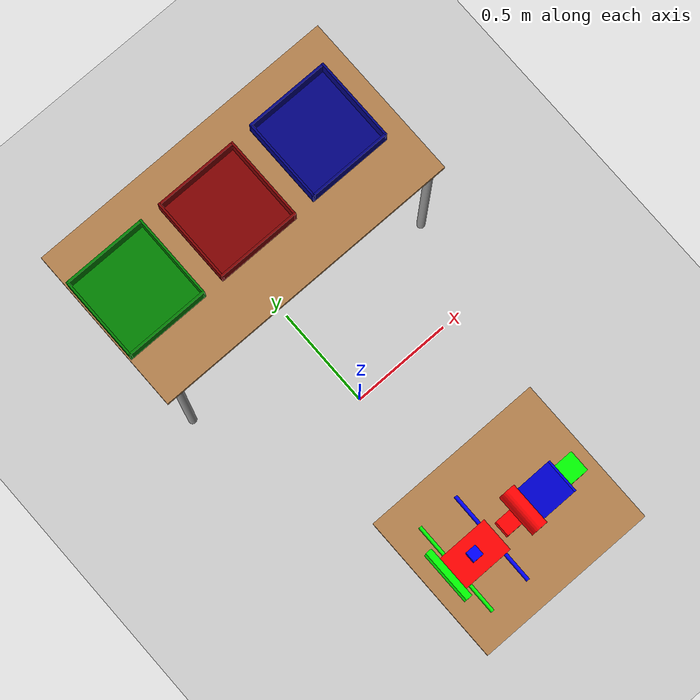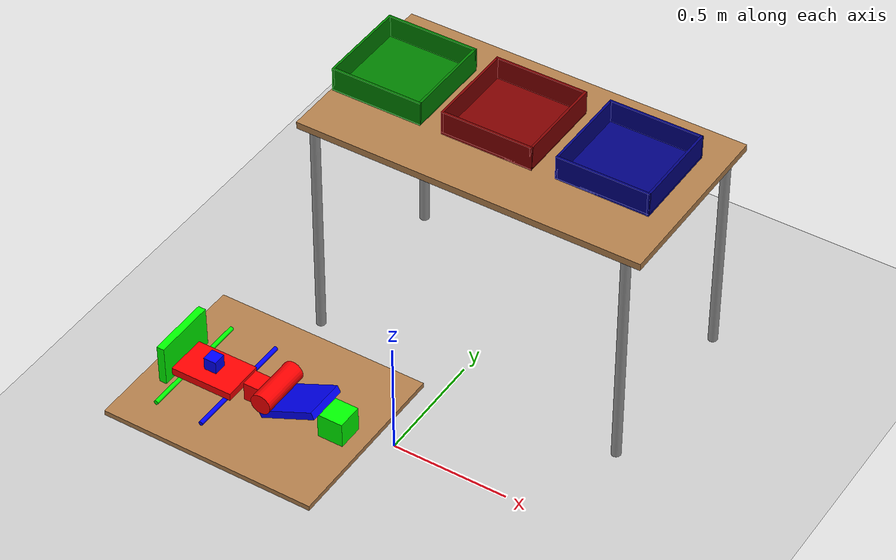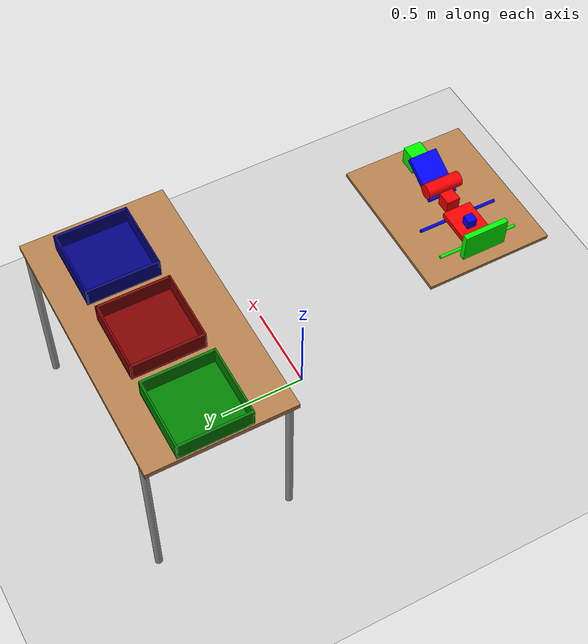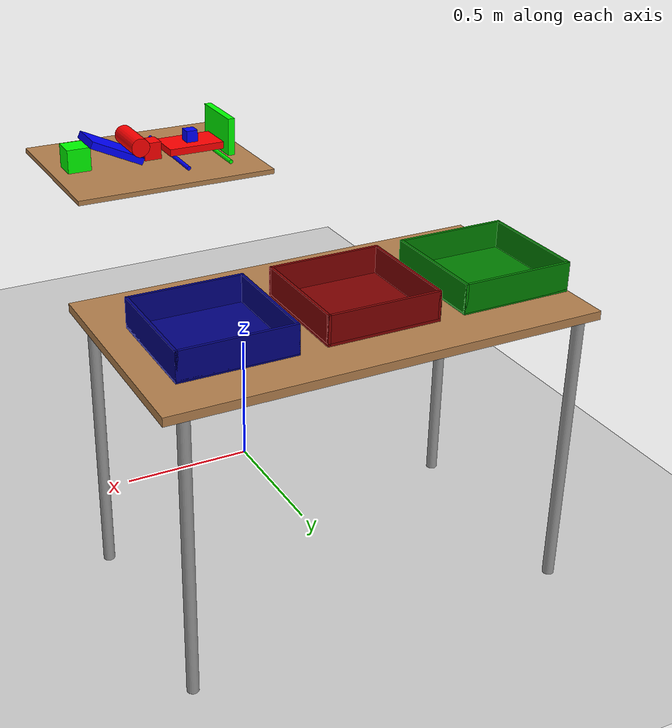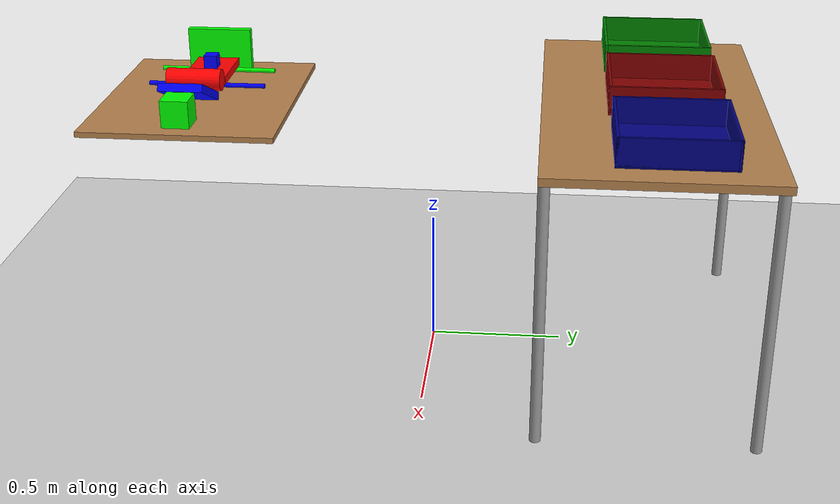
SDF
<sdf version="1.7">
 <world name="default">
  <light name="sun" type="directional">
   <pose>0 0 10 0 -0 0</pose>
   <diffuse>0.8 0.8 0.8 1</diffuse>
   <specular>0.2 0.2 0.2 1</specular>
   <attenuation>
    <range>1000</range>
    <constant>0.9</constant>
    <linear>0.01</linear>
    <quadratic>0.001</quadratic>
   </attenuation>
   <direction>-0.5 0.1 -0.9</direction>
   <spot><inner_angle>0</inner_angle><outer_angle>0</outer_angle><falloff>0</falloff></spot>
  </light>
  <model name="ground_plane">
   <static>1</static>
   <link name="link">
    <collision name="collision">
     <geometry><plane><normal>0 0 1</normal><size>100 100</size></plane></geometry>
     <surface><friction><ode><mu>100</mu><mu2>50</mu2></ode></friction></surface>
    </collision>
    <visual name="visual">
     <cast_shadows>0</cast_shadows>
     <geometry><plane><normal>0 0 1</normal><size>100 100</size></plane></geometry>
     <material>
      <script><uri>file://media/materials/scripts/gazebo.material</uri><name>Gazebo/Grey</name></script>
     </material>
    </visual>
   </link>
  </model>
  <gravity>0 0 -9.8</gravity>
  <magnetic_field>6e-06 2.3e-05 -4.2e-05</magnetic_field>
  <atmosphere type="adiabatic"/>
  <physics type="ode">
   <max_step_size>0.001</max_step_size>
   <real_time_factor>1</real_time_factor>
   <real_time_update_rate>1000</real_time_update_rate>
  </physics>
  <scene><ambient>0.4 0.4 0.4 1</ambient><background>0.7 0.7 0.7 1</background><shadows>1</shadows></scene>
  <audio><device>default</device></audio>
  <spherical_coordinates>
   <surface_model>EARTH_WGS84</surface_model>
   <latitude_deg>0</latitude_deg>
   <longitude_deg>0</longitude_deg>
   <elevation>0</elevation>
   <heading_deg>0</heading_deg>
  </spherical_coordinates>
  <model name="table">
   <static>1</static>
   <link name="link">
    <collision name="surface">
     <pose>0 0 1 0 -0 0</pose>
     <geometry><box><size>1.5 0.8 0.03</size></box></geometry>
     <surface>
      <friction><ode><mu>10</mu><mu2>5</mu2></ode></friction>
      <contact><ode><soft_cfm>0.0001</soft_cfm><soft_erp>0.4</soft_erp><kp>1e+06</kp><kd>10</kd></ode></contact>
     </surface>
    </collision>
    <visual name="visual1">
     <pose>0 0 1 0 -0 0</pose>
     <geometry><box><size>1.5 0.8 0.03</size></box></geometry>
     <material>
      <script><uri>file://media/materials/scripts/gazebo.material</uri><name>Gazebo/Wood</name></script>
     </material>
    </visual>
    <collision name="front_left_leg">
     <pose>0.68 0.38 0.5 0 -0 0</pose>
     <geometry><cylinder><radius>0.02</radius><length>1</length></cylinder></geometry>
    </collision>
    <visual name="front_left_leg">
     <pose>0.68 0.38 0.5 0 -0 0</pose>
     <geometry><cylinder><radius>0.02</radius><length>1</length></cylinder></geometry>
     <material>
      <script><uri>file://media/materials/scripts/gazebo.material</uri><name>Gazebo/Grey</name></script>
     </material>
    </visual>
    <collision name="front_right_leg">
     <pose>0.68 -0.38 0.5 0 -0 0</pose>
     <geometry><cylinder><radius>0.02</radius><length>1</length></cylinder></geometry>
    </collision>
    <visual name="front_right_leg">
     <pose>0.68 -0.38 0.5 0 -0 0</pose>
     <geometry><cylinder><radius>0.02</radius><length>1</length></cylinder></geometry>
     <material>
      <script><uri>file://media/materials/scripts/gazebo.material</uri><name>Gazebo/Grey</name></script>
     </material>
    </visual>
    <collision name="back_right_leg">
     <pose>-0.68 -0.38 0.5 0 -0 0</pose>
     <geometry><cylinder><radius>0.02</radius><length>1</length></cylinder></geometry>
    </collision>
    <visual name="back_right_leg">
     <pose>-0.68 -0.38 0.5 0 -0 0</pose>
     <geometry><cylinder><radius>0.02</radius><length>1</length></cylinder></geometry>
     <material>
      <script><uri>file://media/materials/scripts/gazebo.material</uri><name>Gazebo/Grey</name></script>
     </material>
    </visual>
    <collision name="back_left_leg">
     <pose>-0.68 0.38 0.5 0 -0 0</pose>
     <geometry><cylinder><radius>0.02</radius><length>1</length></cylinder></geometry>
    </collision>
    <visual name="back_left_leg">
     <pose>-0.68 0.38 0.5 0 -0 0</pose>
     <geometry><cylinder><radius>0.02</radius><length>1</length></cylinder></geometry>
     <material>
      <script><uri>file://media/materials/scripts/gazebo.material</uri><name>Gazebo/Grey</name></script>
     </material>
    </visual>
    <inertial>
     <inertia><ixx>1</ixx><ixy>0</ixy><ixz>0</ixz><iyy>1</iyy><iyz>0</iyz><izz>1</izz></inertia>
     <mass>50</mass>
    </inertial>
   </link>
   <pose>0.056083 0.801191 -1.2e-05 0 -0 2.5e-05</pose>
  </model>
  <plugin name="gazebo_link_attacher" filename="libgazebo_link_attacher.so"/>
  <plugin name="gazebo_ros_state" filename="libgazebo_ros_state.so">
   <namespace>/gazebo</namespace>
   <update_rate>100</update_rate>
  </plugin>
  <model name="cube_b">
   <link name="link_2">
    <inertial>
     <mass>2</mass>
     <inertia>
      <ixx>0.00083333</ixx>
      <ixy>0</ixy>
      <ixz>0</ixz>
      <iyy>0.00083333</iyy>
      <iyz>0</iyz>
      <izz>0.00083333</izz>
     </inertia>
    </inertial>
    <visual name="visual">
     <geometry><box><size>0.05 0.05 0.05</size></box></geometry>
     <material>
      <lighting>1</lighting>
      <script><uri>file://media/materials/scripts/gazebo.material</uri><name>Gazebo/Grey</name></script>
      <ambient>0 0 1 1</ambient>
      <diffuse>0 0 1 1</diffuse>
      <specular>0 0 0 1</specular>
      <emissive>0 0 0 1</emissive>
      <shader type="vertex"><normal_map>__default__</normal_map></shader>
     </material>
    </visual>
    <collision name="collision">
     <geometry><box><size>0.05 0.05 0.05</size></box></geometry>
     <surface>
      <friction>
       <ode><mu>0.8</mu><mu2>0.8</mu2><fdir1>0 0 0</fdir1><slip1>0</slip1><slip2>0</slip2></ode>
       <torsional>
        <coefficient>1</coefficient>
        <patch_radius>0</patch_radius>
        <surface_radius>0</surface_radius>
        <use_patch_radius>1</use_patch_radius>
        <ode><slip>0</slip></ode>
       </torsional>
      </friction>
      <bounce><restitution_coefficient>0</restitution_coefficient><threshold>1e+06</threshold></bounce>
      <contact>
       <collide_without_contact>0</collide_without_contact>
       <collide_without_contact_bitmask>1</collide_without_contact_bitmask>
       <collide_bitmask>1</collide_bitmask>
       <ode>
        <soft_cfm>0.0001</soft_cfm>
        <soft_erp>0.4</soft_erp>
        <kp>1e+06</kp>
        <kd>10</kd>
        <max_vel>0.01</max_vel>
        <min_depth>0</min_depth>
       </ode>
      </contact>
     </surface>
    </collision>
   </link>
   <static>0</static>
   <allow_auto_disable>0</allow_auto_disable>
   <pose>-0.160538 -0.870911 1.0567 -1.56988 -0.004212 -0.002553</pose>
  </model>
  <model name="cube_g">
   <link name="link_2">
    <inertial>
     <mass>2</mass>
     <inertia>
      <ixx>0.00333333</ixx>
      <iyy>0.00333333</iyy>
      <izz>0.00333333</izz>
      <ixy>0</ixy>
      <ixz>0</ixz>
      <iyz>0</iyz>
     </inertia>
    </inertial>
    <visual name="visual">
     <geometry><box><size>0.1 0.1 0.1</size></box></geometry>
     <material>
      <lighting>1</lighting>
      <script><uri>file://media/materials/scripts/gazebo.material</uri><name>Gazebo/Grey</name></script>
      <ambient>0 1 0 1</ambient>
      <diffuse>0 1 0 1</diffuse>
      <specular>0 0 0 1</specular>
      <emissive>0 0 0 1</emissive>
      <shader type="vertex"><normal_map>__default__</normal_map></shader>
     </material>
    </visual>
    <collision name="collision">
     <geometry><box><size>0.1 0.1 0.1</size></box></geometry>
     <surface>
      <friction>
       <ode><mu>0.8</mu><mu2>0.8</mu2><fdir1>0 0 0</fdir1><slip1>0</slip1><slip2>0</slip2></ode>
       <torsional>
        <coefficient>1</coefficient>
        <patch_radius>0</patch_radius>
        <surface_radius>0</surface_radius>
        <use_patch_radius>1</use_patch_radius>
        <ode><slip>0</slip></ode>
       </torsional>
      </friction>
      <bounce><restitution_coefficient>0</restitution_coefficient><threshold>1e+06</threshold></bounce>
      <contact>
       <collide_without_contact>0</collide_without_contact>
       <collide_without_contact_bitmask>1</collide_without_contact_bitmask>
       <collide_bitmask>1</collide_bitmask>
       <ode>
        <soft_cfm>0.0001</soft_cfm>
        <soft_erp>0.4</soft_erp>
        <kp>1e+06</kp>
        <kd>10</kd>
        <max_vel>0.01</max_vel>
        <min_depth>0</min_depth>
       </ode>
      </contact>
     </surface>
    </collision>
   </link>
   <static>0</static>
   <allow_auto_disable>0</allow_auto_disable>
   <pose>0.353303 -0.868435 1.03703 0.001157 -0.004137 -0.002457</pose>
  </model>
  <model name="cube_r">
   <link name="link_2">
    <inertial>
     <mass>2</mass>
     <inertia>
      <ixx>0.001875</ixx>
      <ixy>0</ixy>
      <ixz>0</ixz>
      <iyy>0.001875</iyy>
      <iyz>0</iyz>
      <izz>0.001875</izz>
     </inertia>
    </inertial>
    <visual name="visual">
     <geometry><box><size>0.075 0.075 0.075</size></box></geometry>
     <material>
      <lighting>1</lighting>
      <script><uri>file://media/materials/scripts/gazebo.material</uri><name>Gazebo/Grey</name></script>
      <ambient>1 0 0 1</ambient>
      <diffuse>1 0 0 1</diffuse>
      <specular>0 0 0 1</specular>
      <emissive>0 0 0 1</emissive>
      <shader type="vertex"><normal_map>__default__</normal_map></shader>
     </material>
    </visual>
    <collision name="collision">
     <geometry><box><size>0.075 0.075 0.075</size></box></geometry>
     <surface>
      <friction>
       <ode><mu>0.8</mu><mu2>0.8</mu2><fdir1>0 0 0</fdir1><slip1>0</slip1><slip2>0</slip2></ode>
       <torsional>
        <coefficient>1</coefficient>
        <patch_radius>0</patch_radius>
        <surface_radius>0</surface_radius>
        <use_patch_radius>1</use_patch_radius>
        <ode><slip>0</slip></ode>
       </torsional>
      </friction>
      <bounce><restitution_coefficient>0</restitution_coefficient><threshold>1e+06</threshold></bounce>
      <contact>
       <collide_without_contact>0</collide_without_contact>
       <collide_without_contact_bitmask>1</collide_without_contact_bitmask>
       <collide_bitmask>1</collide_bitmask>
       <ode>
        <soft_cfm>0.0001</soft_cfm>
        <soft_erp>0.4</soft_erp>
        <kp>1e+06</kp>
        <kd>10</kd>
        <max_vel>0.01</max_vel>
        <min_depth>0</min_depth>
       </ode>
      </contact>
     </surface>
    </collision>
   </link>
   <static>0</static>
   <allow_auto_disable>0</allow_auto_disable>
   <pose>0.025995 -0.869007 1.02317 1.56663 -0.001118 1.57222</pose>
  </model>
  <model name="cylinder_r">
   <link name="link_0">
    <inertial>
     <mass>0.2</mass>
     <inertia>
      <ixx>0.000747</ixx>
      <ixy>0</ixy>
      <ixz>0</ixz>
      <iyy>0.000747</iyy>
      <iyz>0</iyz>
      <izz>0.00016</izz>
     </inertia>
    </inertial>
    <visual name="visual">
     <geometry><cylinder><radius>0.04</radius><length>0.2</length></cylinder></geometry>
     <material>
      <lighting>1</lighting>
      <script><uri>file://media/materials/scripts/gazebo.material</uri><name>Gazebo/Grey</name></script>
      <ambient>1 0 0 1</ambient>
      <diffuse>1 0 0 1</diffuse>
      <specular>0 0 0 1</specular>
      <emissive>0 0 0 1</emissive>
      <shader type="vertex"><normal_map>__default__</normal_map></shader>
     </material>
    </visual>
    <collision name="collision">
     <geometry><cylinder><radius>0.04</radius><length>0.2</length></cylinder></geometry>
     <surface>
      <friction>
       <ode><mu>0.5</mu><mu2>0.5</mu2><fdir1>0 0 0</fdir1><slip1>0</slip1><slip2>0</slip2></ode>
       <torsional>
        <coefficient>1</coefficient>
        <patch_radius>0</patch_radius>
        <surface_radius>0</surface_radius>
        <use_patch_radius>1</use_patch_radius>
        <ode><slip>0</slip></ode>
       </torsional>
      </friction>
      <bounce><restitution_coefficient>0</restitution_coefficient><threshold>1e+06</threshold></bounce>
      <contact>
       <collide_without_contact>0</collide_without_contact>
       <collide_without_contact_bitmask>1</collide_without_contact_bitmask>
       <collide_bitmask>1</collide_bitmask>
       <ode>
        <soft_cfm>0.0001</soft_cfm>
        <soft_erp>0.4</soft_erp>
        <kp>1e+06</kp>
        <kd>10</kd>
        <max_vel>0.01</max_vel>
        <min_depth>0</min_depth>
       </ode>
      </contact>
     </surface>
    </collision>
   </link>
   <static>0</static>
   <allow_auto_disable>0</allow_auto_disable>
   <pose>0.102543 -0.868494 1.06875 1.55486 1.54401 -0.014822</pose>
  </model>
  <model name="cylinder_b">
   <link name="link_0">
    <inertial>
     <mass>0.2</mass>
     <inertia><ixx>0.00331</ixx><ixy>0</ixy><ixz>0</ixz><iyy>0.00331</iyy><iyz>0</iyz><izz>7.11e-06</izz></inertia>
    </inertial>
    <visual name="visual">
     <geometry><cylinder><radius>0.00843157</radius><length>0.445034</length></cylinder></geometry>
     <material>
      <lighting>1</lighting>
      <ambient>0 0 1 1</ambient>
      <diffuse>0 0 1 1</diffuse>
      <specular>0.1 0.1 0.1 1</specular>
      <emissive>0 0 0 1</emissive>
      <shader type="vertex"><normal_map>__default__</normal_map></shader>
     </material>
    </visual>
    <collision name="collision">
     <geometry><cylinder><radius>0.008432</radius><length>0.445034</length></cylinder></geometry>
     <surface>
      <friction>
       <ode><mu>0.4</mu><mu2>0.4</mu2><fdir1>0 0 0</fdir1><slip1>0</slip1><slip2>0</slip2></ode>
       <torsional>
        <coefficient>1</coefficient>
        <patch_radius>0</patch_radius>
        <surface_radius>0</surface_radius>
        <use_patch_radius>1</use_patch_radius>
        <ode><slip>0</slip></ode>
       </torsional>
      </friction>
      <bounce><restitution_coefficient>0</restitution_coefficient><threshold>1e+06</threshold></bounce>
      <contact>
       <collide_without_contact>0</collide_without_contact>
       <collide_without_contact_bitmask>1</collide_without_contact_bitmask>
       <collide_bitmask>1</collide_bitmask>
       <ode>
        <soft_cfm>0.0001</soft_cfm>
        <soft_erp>0.4</soft_erp>
        <kp>1e+06</kp>
        <kd>10</kd>
        <max_vel>0.01</max_vel>
        <min_depth>0</min_depth>
       </ode>
      </contact>
     </surface>
    </collision>
   </link>
   <static>0</static>
   <allow_auto_disable>0</allow_auto_disable>
   <pose>-0.060636 -0.868825 0.993725 1.57798 1.40945 0.000473</pose>
  </model>
  <model name="cylinder_g">
   <link name="link_0">
    <inertial>
     <mass>0.2</mass>
     <inertia><ixx>0.00331</ixx><ixy>0</ixy><ixz>0</ixz><iyy>0.00331</iyy><iyz>0</iyz><izz>7.11e-06</izz></inertia>
    </inertial>
    <visual name="visual">
     <geometry><cylinder><radius>0.00843157</radius><length>0.445034</length></cylinder></geometry>
     <material>
      <lighting>1</lighting>
      <ambient>0 1 0 1</ambient>
      <diffuse>0 1 0 1</diffuse>
      <specular>0.1 0.1 0.1 1</specular>
      <emissive>0 0 0 1</emissive>
      <shader type="vertex"><normal_map>__default__</normal_map></shader>
     </material>
    </visual>
    <collision name="collision">
     <geometry><cylinder><radius>0.008432</radius><length>0.445034</length></cylinder></geometry>
     <surface>
      <friction>
       <ode><mu>0.5</mu><mu2>0.5</mu2><fdir1>0 0 0</fdir1><slip1>0</slip1><slip2>0</slip2></ode>
       <torsional>
        <coefficient>1</coefficient>
        <patch_radius>0</patch_radius>
        <surface_radius>0</surface_radius>
        <use_patch_radius>1</use_patch_radius>
        <ode><slip>0</slip></ode>
       </torsional>
      </friction>
      <bounce><restitution_coefficient>0</restitution_coefficient><threshold>1e+06</threshold></bounce>
      <contact>
       <collide_without_contact>0</collide_without_contact>
       <collide_without_contact_bitmask>1</collide_without_contact_bitmask>
       <collide_bitmask>1</collide_bitmask>
       <ode>
        <soft_cfm>0.0001</soft_cfm>
        <soft_erp>0.4</soft_erp>
        <kp>1e+06</kp>
        <kd>10</kd>
        <max_vel>0.01</max_vel>
        <min_depth>0</min_depth>
       </ode>
      </contact>
     </surface>
    </collision>
   </link>
   <static>0</static>
   <allow_auto_disable>0</allow_auto_disable>
   <pose>-0.250642 -0.868155 0.992934 1.57781 1.40558 0.000848</pose>
  </model>
  <model name="cuboid_r">
   <link name="link">
    <inertial>
     <mass>2</mass>
     <inertia><ixx>0.00442</ixx><iyy>0.0101</iyy><izz>0.0143</izz><ixy>0</ixy><ixz>0</ixz><iyz>0</iyz></inertia>
    </inertial>
    <visual name="visual">
     <geometry><box><size>0.245 0.16 0.03</size></box></geometry>
     <material><ambient>1 0 0 1</ambient><diffuse>1 0 0 1</diffuse><specular>0.1 0.1 0.1 1</specular></material>
    </visual>
    <collision name="collision">
     <geometry><box><size>0.245 0.16 0.03</size></box></geometry>
     <surface>
      <friction>
       <ode><mu>0.6</mu><mu2>0.6</mu2><fdir1>0 0 0</fdir1><slip1>0</slip1><slip2>0</slip2></ode>
       <torsional>
        <coefficient>1</coefficient>
        <patch_radius>0</patch_radius>
        <surface_radius>0</surface_radius>
        <use_patch_radius>1</use_patch_radius>
        <ode><slip>0</slip></ode>
       </torsional>
      </friction>
      <bounce><restitution_coefficient>0</restitution_coefficient><threshold>1e+06</threshold></bounce>
      <contact>
       <collide_without_contact>0</collide_without_contact>
       <collide_without_contact_bitmask>1</collide_without_contact_bitmask>
       <collide_bitmask>1</collide_bitmask>
       <ode>
        <soft_cfm>0.0001</soft_cfm>
        <soft_erp>0.4</soft_erp>
        <kp>1e+06</kp>
        <kd>10</kd>
        <max_vel>0.01</max_vel>
        <min_depth>0</min_depth>
       </ode>
      </contact>
     </surface>
    </collision>
   </link>
   <static>0</static>
   <allow_auto_disable>0</allow_auto_disable>
   <pose>-0.159413 -0.873278 1.01672 3.1407 0.004195 -3.13882</pose>
  </model>
  <model name="cuboid_g">
   <link name="link">
    <inertial>
     <mass>2</mass>
     <inertia><ixx>0.00442</ixx><iyy>0.0101</iyy><izz>0.0143</izz><ixy>0</ixy><ixz>0</ixz><iyz>0</iyz></inertia>
    </inertial>
    <visual name="visual">
     <geometry><box><size>0.245 0.16 0.03</size></box></geometry>
     <material><ambient>0 1 0 1</ambient><diffuse>0 1 0 1</diffuse><specular>0.1 0.1 0.1 1</specular></material>
    </visual>
    <collision name="collision">
     <geometry><box><size>0.245 0.16 0.03</size></box></geometry>
     <surface>
      <friction>
       <ode><mu>0.6</mu><mu2>0.6</mu2><fdir1>0 0 0</fdir1><slip1>0</slip1><slip2>0</slip2></ode>
       <torsional>
        <coefficient>1</coefficient>
        <patch_radius>0</patch_radius>
        <surface_radius>0</surface_radius>
        <use_patch_radius>1</use_patch_radius>
        <ode><slip>0</slip></ode>
       </torsional>
      </friction>
      <bounce><restitution_coefficient>0</restitution_coefficient><threshold>1e+06</threshold></bounce>
      <contact>
       <collide_without_contact>0</collide_without_contact>
       <collide_without_contact_bitmask>1</collide_without_contact_bitmask>
       <collide_bitmask>1</collide_bitmask>
       <ode>
        <soft_cfm>0.0001</soft_cfm>
        <soft_erp>0.4</soft_erp>
        <kp>1e+06</kp>
        <kd>10</kd>
        <max_vel>0.01</max_vel>
        <min_depth>0</min_depth>
       </ode>
      </contact>
     </surface>
    </collision>
   </link>
   <static>0</static>
   <allow_auto_disable>0</allow_auto_disable>
   <pose>-0.297347 -0.866839 1.06433 -1.56663 0.001126 -1.57096</pose>
  </model>
  <model name="cuboid_b">
   <link name="link">
    <inertial>
     <mass>2</mass>
     <inertia><ixx>0.00442</ixx><iyy>0.0101</iyy><izz>0.0143</izz><ixy>0</ixy><ixz>0</ixz><iyz>0</iyz></inertia>
    </inertial>
    <visual name="visual">
     <geometry><box><size>0.245 0.16 0.03</size></box></geometry>
     <material><ambient>0 0 1 1</ambient><diffuse>0 0 1 1</diffuse><specular>0.1 0.1 0.1 1</specular></material>
    </visual>
    <collision name="collision">
     <geometry><box><size>0.245 0.16 0.03</size></box></geometry>
     <surface>
      <friction>
       <ode><mu>0.6</mu><mu2>0.6</mu2><fdir1>0 0 0</fdir1><slip1>0</slip1><slip2>0</slip2></ode>
       <torsional>
        <coefficient>1</coefficient>
        <patch_radius>0</patch_radius>
        <surface_radius>0</surface_radius>
        <use_patch_radius>1</use_patch_radius>
        <ode><slip>0</slip></ode>
       </torsional>
      </friction>
      <bounce><restitution_coefficient>0</restitution_coefficient><threshold>1e+06</threshold></bounce>
      <contact>
       <collide_without_contact>0</collide_without_contact>
       <collide_without_contact_bitmask>1</collide_without_contact_bitmask>
       <collide_bitmask>1</collide_bitmask>
       <ode>
        <soft_cfm>0.0001</soft_cfm>
        <soft_erp>0.4</soft_erp>
        <kp>1e+06</kp>
        <kd>10</kd>
        <max_vel>0.01</max_vel>
        <min_depth>0</min_depth>
       </ode>
      </contact>
     </surface>
    </collision>
   </link>
   <static>0</static>
   <allow_auto_disable>0</allow_auto_disable>
   <pose>0.195613 -0.869313 1.05219 -0.001239 0.444822 3.1389</pose>
  </model>
  <model name="workspace">
   <link name="link">
    <inertial>
     <mass>100</mass>
     <inertia><ixx>6.02417</ixx><ixy>0</ixy><ixz>0</ixz><iyy>4.08667</iyy><iyz>0</iyz><izz>10.1042</izz></inertia>
    </inertial>
    <visual name="visual">
     <geometry><box><size>0.7 0.85 0.02</size></box></geometry>
     <material>
      <script><name>Gazebo/Wood</name><uri>file://media/materials/scripts/gazebo.material</uri></script>
      <shader type="pixel"/>
     </material>
    </visual>
    <collision name="collision">
     <geometry><box><size>0.7 0.85 0.02</size></box></geometry>
     <surface>
      <friction>
       <ode><mu>100</mu><mu2>50</mu2><fdir1>0 0 0</fdir1><slip1>0</slip1><slip2>0</slip2></ode>
       <torsional>
        <coefficient>1</coefficient>
        <patch_radius>0</patch_radius>
        <surface_radius>0</surface_radius>
        <use_patch_radius>1</use_patch_radius>
        <ode><slip>0</slip></ode>
       </torsional>
      </friction>
      <bounce><restitution_coefficient>0</restitution_coefficient><threshold>1e+06</threshold></bounce>
      <contact>
       <collide_without_contact>0</collide_without_contact>
       <collide_without_contact_bitmask>1</collide_without_contact_bitmask>
       <collide_bitmask>1</collide_bitmask>
       <ode>
        <soft_cfm>0.0001</soft_cfm>
        <soft_erp>0.2</soft_erp>
        <kp>1e+13</kp>
        <kd>10</kd>
        <max_vel>0.01</max_vel>
        <min_depth>0</min_depth>
       </ode>
       <bullet>
        <split_impulse>1</split_impulse>
        <split_impulse_penetration_threshold>-0.01</split_impulse_penetration_threshold>
        <soft_cfm>0</soft_cfm>
        <soft_erp>0.2</soft_erp>
        <kp>1e+13</kp>
        <kd>1</kd>
       </bullet>
      </contact>
     </surface>
    </collision>
   </link>
   <static>1</static>
   <pose>0.0416 -0.859914 0.975746 -0.004154 -0.001127 1.57039</pose>
  </model>
  <model name="tray_red">
   <static>1</static>
   <link name="link">
    <collision name="base_collision">
     <pose>0 0 0.01 0 -0 0</pose>
     <geometry><box><size>0.4 0.4 0.01</size></box></geometry>
     <surface><contact><ode><mu>50</mu><mu2>50</mu2></ode></contact></surface>
    </collision>
    <visual name="base_visual">
     <pose>0 0 0.01 0 -0 0</pose>
     <geometry><box><size>0.4 0.4 0.01</size></box></geometry>
     <material>
      <ambient>1 0 0 1</ambient>
      <diffuse>0.5 0 0 1</diffuse>
      <specular>0 0 0 1</specular>
      <emissive>0 0 0 1</emissive>
      <shininess>100</shininess>
     </material>
    </visual>
    <collision name="front_collision">
     <pose>0 0.195 0.06 0 -0 0</pose>
     <geometry><box><size>0.4 0.01 0.1</size></box></geometry>
    </collision>
    <visual name="front_visual">
     <pose>0 0.195 0.06 0 -0 0</pose>
     <geometry><box><size>0.4 0.01 0.1</size></box></geometry>
     <material>
      <ambient>1 0 0 1</ambient>
      <diffuse>0.5 0 0 1</diffuse>
      <specular>0 0 0 1</specular>
      <emissive>0 0 0 1</emissive>
     </material>
    </visual>
    <collision name="back_collision">
     <pose>0 -0.195 0.06 0 -0 0</pose>
     <geometry><box><size>0.4 0.01 0.1</size></box></geometry>
    </collision>
    <visual name="back_visual">
     <pose>0 -0.195 0.06 0 -0 0</pose>
     <geometry><box><size>0.4 0.01 0.1</size></box></geometry>
     <material>
      <ambient>1 0 0 1</ambient>
      <diffuse>0.5 0 0 1</diffuse>
      <specular>0 0 0 1</specular>
      <emissive>0 0 0 1</emissive>
     </material>
    </visual>
    <collision name="left_collision">
     <pose>0.195 0 0.06 0 -0 0</pose>
     <geometry><box><size>0.01 0.4 0.1</size></box></geometry>
    </collision>
    <visual name="left_visual">
     <pose>0.195 0 0.06 0 -0 0</pose>
     <geometry><box><size>0.01 0.4 0.1</size></box></geometry>
     <material>
      <ambient>1 0 0 1</ambient>
      <diffuse>0.5 0 0 1</diffuse>
      <specular>0 0 0 1</specular>
      <emissive>0 0 0 1</emissive>
     </material>
    </visual>
    <collision name="right_collision">
     <pose>-0.195 0 0.06 0 -0 0</pose>
     <geometry><box><size>0.01 0.4 0.1</size></box></geometry>
    </collision>
    <visual name="right_visual">
     <pose>-0.195 0 0.06 0 -0 0</pose>
     <geometry><box><size>0.01 0.4 0.1</size></box></geometry>
     <material>
      <ambient>1 0 0 1</ambient>
      <diffuse>0.5 0 0 1</diffuse>
      <specular>0 0 0 1</specular>
      <emissive>0 0 0 1</emissive>
     </material>
    </visual>
    <inertial>
     <inertia><ixx>1</ixx><ixy>0</ixy><ixz>0</ixz><iyy>1</iyy><iyz>0</iyz><izz>1</izz></inertia>
     <mass>1</mass>
    </inertial>
   </link>
   <pose>0.003367 0.836815 1.00999 0 -0 0</pose>
  </model>
  <model name="tray_green">
   <static>1</static>
   <link name="link">
    <collision name="base_collision">
     <pose>0 0 0.01 0 -0 0</pose>
     <geometry><box><size>0.4 0.4 0.01</size></box></geometry>
     <surface><contact><ode><mu>50</mu><mu2>50</mu2></ode></contact></surface>
    </collision>
    <visual name="base_visual">
     <pose>0 0 0.01 0 -0 0</pose>
     <geometry><box><size>0.4 0.4 0.01</size></box></geometry>
     <material><ambient>0 1 0 1</ambient><diffuse>0 0.5 0 1</diffuse></material>
    </visual>
    <collision name="front_collision">
     <pose>0 0.195 0.06 0 -0 0</pose>
     <geometry><box><size>0.4 0.01 0.1</size></box></geometry>
    </collision>
    <visual name="front_visual">
     <pose>0 0.195 0.06 0 -0 0</pose>
     <geometry><box><size>0.4 0.01 0.1</size></box></geometry>
     <material><ambient>0 1 0 1</ambient><diffuse>0 0.5 0 1</diffuse></material>
    </visual>
    <collision name="back_collision">
     <pose>0 -0.195 0.06 0 -0 0</pose>
     <geometry><box><size>0.4 0.01 0.1</size></box></geometry>
    </collision>
    <visual name="back_visual">
     <pose>0 -0.195 0.06 0 -0 0</pose>
     <geometry><box><size>0.4 0.01 0.1</size></box></geometry>
     <material><ambient>0 1 0 1</ambient><diffuse>0 0.5 0 1</diffuse></material>
    </visual>
    <collision name="left_collision">
     <pose>0.195 0 0.06 0 -0 0</pose>
     <geometry><box><size>0.01 0.4 0.1</size></box></geometry>
    </collision>
    <visual name="left_visual">
     <pose>0.195 0 0.06 0 -0 0</pose>
     <geometry><box><size>0.01 0.4 0.1</size></box></geometry>
     <material><ambient>0 1 0 1</ambient><diffuse>0 0.5 0 1</diffuse></material>
    </visual>
    <collision name="right_collision">
     <pose>-0.195 0 0.06 0 -0 0</pose>
     <geometry><box><size>0.01 0.4 0.1</size></box></geometry>
    </collision>
    <visual name="right_visual">
     <pose>-0.195 0 0.06 0 -0 0</pose>
     <geometry><box><size>0.01 0.4 0.1</size></box></geometry>
     <material><ambient>0 1 0 1</ambient><diffuse>0 0.5 0 1</diffuse></material>
    </visual>
    <inertial>
     <inertia><ixx>1</ixx><ixy>0</ixy><ixz>0</ixz><iyy>1</iyy><iyz>0</iyz><izz>1</izz></inertia>
     <mass>1</mass>
    </inertial>
   </link>
   <pose>-0.487214 0.834657 1.00999 0 -0 0</pose>
  </model>
  <model name="tray_blue">
   <static>1</static>
   <link name="link">
    <collision name="base_collision">
     <pose>0 0 0.01 0 -0 0</pose>
     <geometry><box><size>0.4 0.4 0.01</size></box></geometry>
     <surface><contact><ode><mu>50</mu><mu2>50</mu2></ode></contact></surface>
    </collision>
    <visual name="base_visual">
     <pose>0 0 0.01 0 -0 0</pose>
     <geometry><box><size>0.4 0.4 0.01</size></box></geometry>
     <material><ambient>0 0 1 1</ambient><diffuse>0 0 0.5 1</diffuse></material>
    </visual>
    <collision name="front_collision">
     <pose>0 0.195 0.06 0 -0 0</pose>
     <geometry><box><size>0.4 0.01 0.1</size></box></geometry>
    </collision>
    <visual name="front_visual">
     <pose>0 0.195 0.06 0 -0 0</pose>
     <geometry><box><size>0.4 0.01 0.1</size></box></geometry>
     <material><ambient>0 0 1 1</ambient><diffuse>0 0 0.5 1</diffuse></material>
    </visual>
    <collision name="back_collision">
     <pose>0 -0.195 0.06 0 -0 0</pose>
     <geometry><box><size>0.4 0.01 0.1</size></box></geometry>
    </collision>
    <visual name="back_visual">
     <pose>0 -0.195 0.06 0 -0 0</pose>
     <geometry><box><size>0.4 0.01 0.1</size></box></geometry>
     <material><ambient>0 0 1 1</ambient><diffuse>0 0 0.5 1</diffuse></material>
    </visual>
    <collision name="left_collision">
     <pose>0.195 0 0.06 0 -0 0</pose>
     <geometry><box><size>0.01 0.4 0.1</size></box></geometry>
    </collision>
    <visual name="left_visual">
     <pose>0.195 0 0.06 0 -0 0</pose>
     <geometry><box><size>0.01 0.4 0.1</size></box></geometry>
     <material><ambient>0 0 1 1</ambient><diffuse>0 0 0.5 1</diffuse></material>
    </visual>
    <collision name="right_collision">
     <pose>-0.195 0 0.06 0 -0 0</pose>
     <geometry><box><size>0.01 0.4 0.1</size></box></geometry>
    </collision>
    <visual name="right_visual">
     <pose>-0.195 0 0.06 0 -0 0</pose>
     <geometry><box><size>0.01 0.4 0.1</size></box></geometry>
     <material><ambient>0 0 1 1</ambient><diffuse>0 0 0.5 1</diffuse></material>
    </visual>
    <inertial>
     <inertia><ixx>1</ixx><ixy>0</ixy><ixz>0</ixz><iyy>1</iyy><iyz>0</iyz><izz>1</izz></inertia>
     <mass>1</mass>
    </inertial>
   </link>
   <pose>0.500589 0.844197 1.00999 0 -0 0</pose>
  </model>
 </world>
</sdf>
